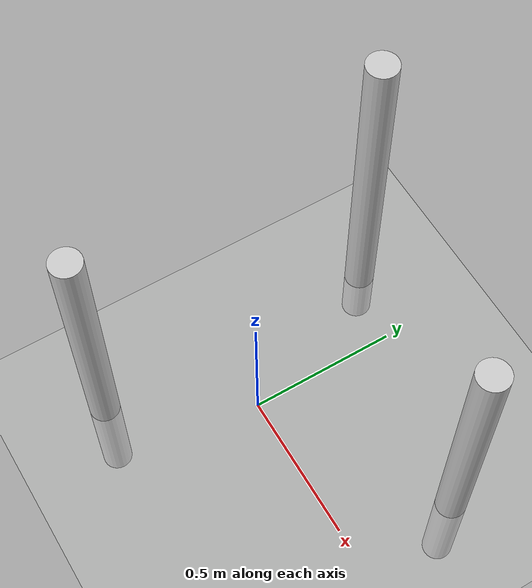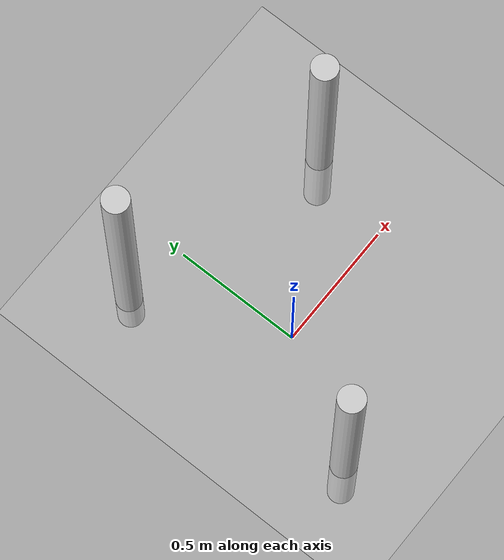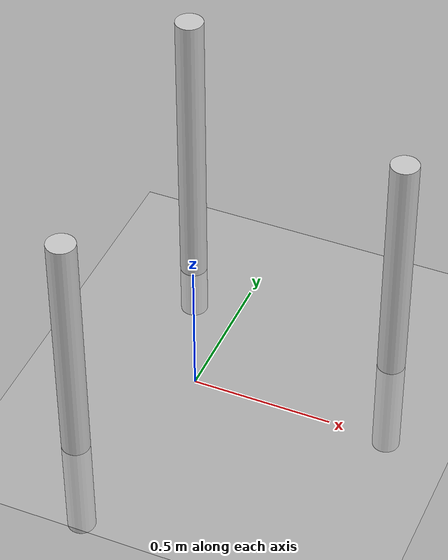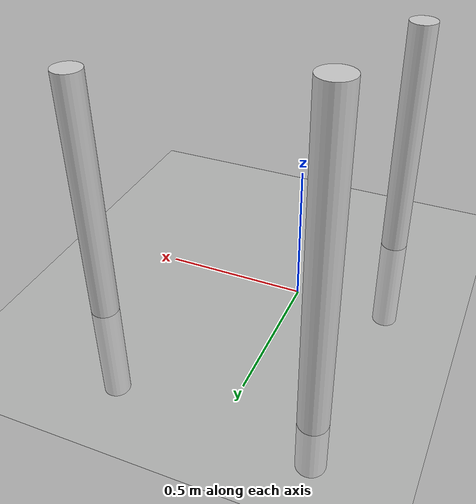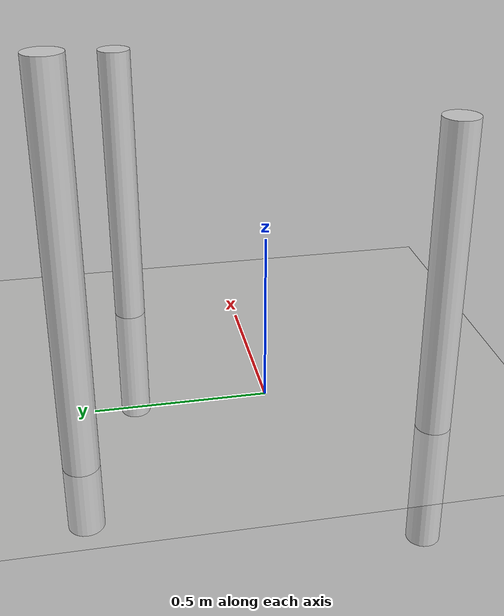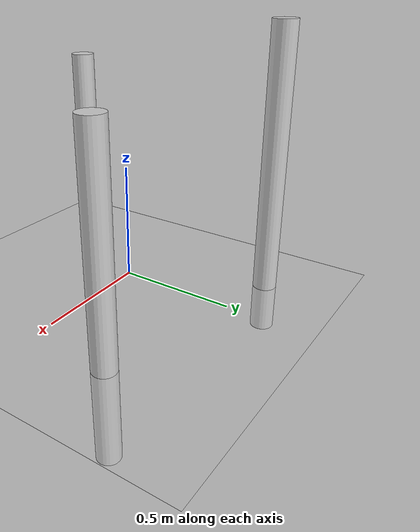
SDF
<sdf version="1.7">
 <world name="default">
  <plugin name="gazebo_ros_state" filename="libgazebo_ros_state.so">
   <ros><namespace>/gazebo</namespace></ros>
   <update_rate>1.0</update_rate>
  </plugin>
  <include><uri>model://obstacle_goal</uri></include>
  <light name="sun" type="directional">
   <pose>0 0 10 0 -0 0</pose>
   <diffuse>0.8 0.8 0.8 1</diffuse>
   <specular>0.2 0.2 0.2 1</specular>
   <attenuation>
    <range>1000</range>
    <constant>0.9</constant>
    <linear>0.01</linear>
    <quadratic>0.001</quadratic>
   </attenuation>
   <direction>-0.5 0.1 -0.9</direction>
   <spot><inner_angle>0</inner_angle><outer_angle>0</outer_angle><falloff>0</falloff></spot>
  </light>
  <model name="ground_plane">
   <static>1</static>
   <link name="link">
    <collision name="collision">
     <geometry><plane><normal>0 0 1</normal><size>100 100</size></plane></geometry>
     <surface>
      <contact><collide_bitmask>65535</collide_bitmask></contact>
      <friction><ode><mu>100</mu><mu2>50</mu2></ode></friction>
     </surface>
    </collision>
    <visual name="visual">
     <geometry><plane><normal>0 0 1</normal><size>100 100</size></plane></geometry>
     <material>
      <script><uri>file://media/materials/scripts/gazebo.material</uri><name>Gazebo/Grey</name></script>
     </material>
    </visual>
   </link>
  </model>
  <gravity>0 0 -9.8</gravity>
  <magnetic_field>6e-06 2.3e-05 -4.2e-05</magnetic_field>
  <atmosphere type="adiabatic"/>
  <physics type="ode">
   <max_step_size>0.001</max_step_size>
   <real_time_factor>1</real_time_factor>
   <real_time_update_rate>1000</real_time_update_rate>
  </physics>
  <scene><ambient>0.4 0.4 0.4 1</ambient><background>0.7 0.7 0.7 1</background><shadows>1</shadows></scene>
  <spherical_coordinates>
   <surface_model>EARTH_WGS84</surface_model>
   <latitude_deg>0</latitude_deg>
   <longitude_deg>0</longitude_deg>
   <elevation>0</elevation>
   <heading_deg>0</heading_deg>
  </spherical_coordinates>
 </world>
</sdf>

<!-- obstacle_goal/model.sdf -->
<sdf version="1.6">
  <model name="obstacle_goal">
    <static>true</static>

    <!-- Cilindro 1 -->
    <link name="cylinder_link_1">
      <pose>0.6 0.35 0.25 0 0 0</pose>

      <collision name="cylinder_collision_1">
        <geometry>
          <cylinder>
            <radius>0.05</radius>
            <length>1.3</length>
          </cylinder>
        </geometry>
        <inertial>
          <mass>1.0</mass>
          <inertia>
            <ixx>0.1</ixx>
            <iyy>0.1</iyy>
            <izz>0.1</izz>
          </inertia>
        </inertial>
        <surface>
          <contact>
            <collide_without_contact>false</collide_without_contact>
            <collide_without_contact_bitmask>1</collide_without_contact_bitmask>
          </contact>
          <friction>
            <ode>
              <mu>1.0</mu>
              <mu2>1.0</mu2>
            </ode>
          </friction>
        </surface>
      </collision>

      <visual name="cylinder_visual_1">
        <geometry>
          <cylinder>
            <radius>0.05</radius>
            <length>1.3</length>
          </cylinder>
        </geometry>
        <material>
          <ambient>0.8 0.8 0.8 1.0</ambient>
          <diffuse>0.8 0.8 0.8 1.0</diffuse>
          <pbr>
            <metal>
              <metalness>1.0</metalness>
              <roughness>0.2</roughness>
            </metal>
          </pbr>
        </material>
      </visual>
    </link>

    <!-- Cilindro 2 -->
    <link name="cylinder_link_2">
      <pose>-0.25 0.55 0.45 0 0 0</pose>
      <collision name="cylinder_collision_2">
        <geometry>
          <cylinder>
            <radius>0.05</radius>
            <length>1.3</length>
          </cylinder>
        </geometry>
        <inertial>
          <mass>1.0</mass>
          <inertia>
            <ixx>0.1</ixx>
            <iyy>0.1</iyy>
            <izz>0.1</izz>
          </inertia>
        </inertial>
        <surface>
          <contact>
            <collide_without_contact>false</collide_without_contact>
            <collide_without_contact_bitmask>1</collide_without_contact_bitmask>
          </contact>
          <friction>
            <ode>
              <mu>1.0</mu>
              <mu2>1.0</mu2>
            </ode>
          </friction>
        </surface>
      </collision>
      <visual name="cylinder_visual_2">
        <geometry>
          <cylinder>
            <radius>0.05</radius>
            <length>1.3</length>
          </cylinder>
        </geometry>
        <material>
          <ambient>0.8 0.8 0.8 1.0</ambient>
          <diffuse>0.8 0.8 0.8 1.0</diffuse>
          <pbr>
            <metal>
              <metalness>1.0</metalness>
              <roughness>0.2</roughness>
            </metal>
          </pbr>
        </material>
      </visual>
    </link>

    <!-- Cilindro 3 -->
    <link name="cylinder_link_3">
      <pose>-0.25 -0.433 0.25 0 0 0</pose>
      <collision name="cylinder_collision_3">
        <geometry>
          <cylinder>
            <radius>0.05</radius>
            <length>1.3</length>
          </cylinder>
        </geometry>
        <inertial>
          <mass>1.0</mass>
          <inertia>
            <ixx>0.1</ixx>
            <iyy>0.1</iyy>
            <izz>0.1</izz>
          </inertia>
        </inertial>
        <surface>
          <contact>
            <collide_without_contact>false</collide_without_contact>
            <collide_without_contact_bitmask>1</collide_without_contact_bitmask>
          </contact>
          <friction>
            <ode>
              <mu>1.0</mu>
              <mu2>1.0</mu2>
            </ode>
          </friction>
        </surface>
      </collision>
      <visual name="cylinder_visual_3">
        <geometry>
          <cylinder>
            <radius>0.05</radius>
            <length>1.3</length>
          </cylinder>
        </geometry>
        <material>
          <ambient>0.8 0.8 0.8 1.0</ambient>
          <diffuse>0.8 0.8 0.8 1.0</diffuse>
          <pbr>
            <metal>
              <metalness>1.0</metalness>
              <roughness>0.2</roughness>
            </metal>
          </pbr>
        </material>
      </visual>
    </link>

  </model>
</sdf>
